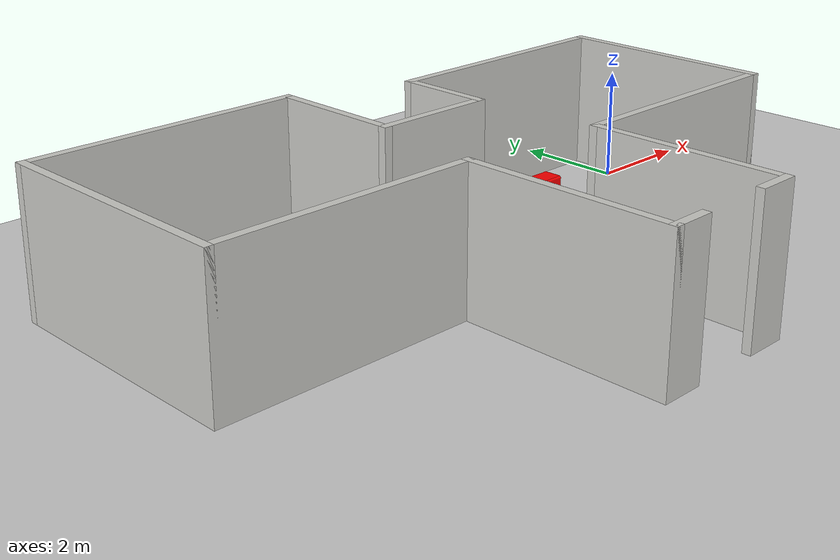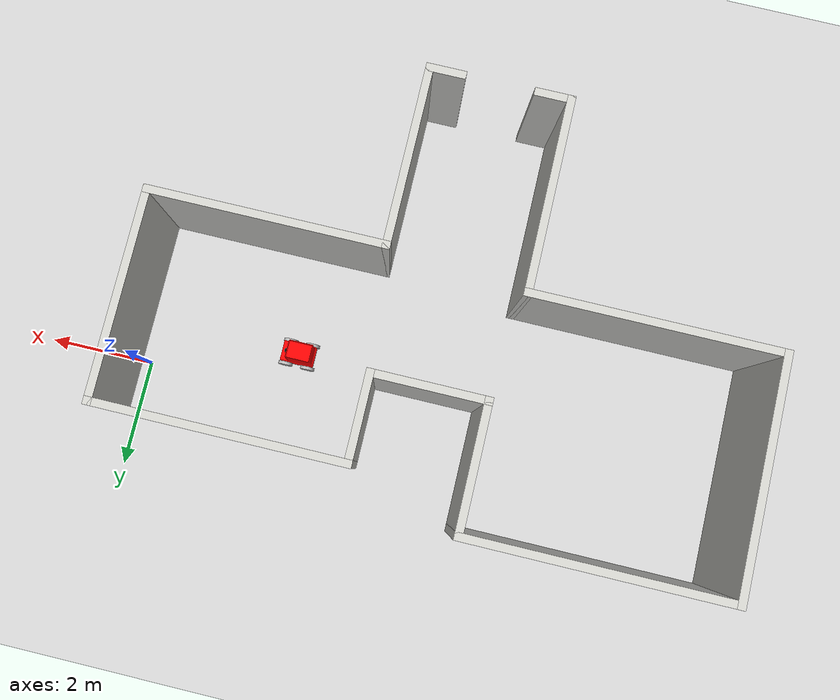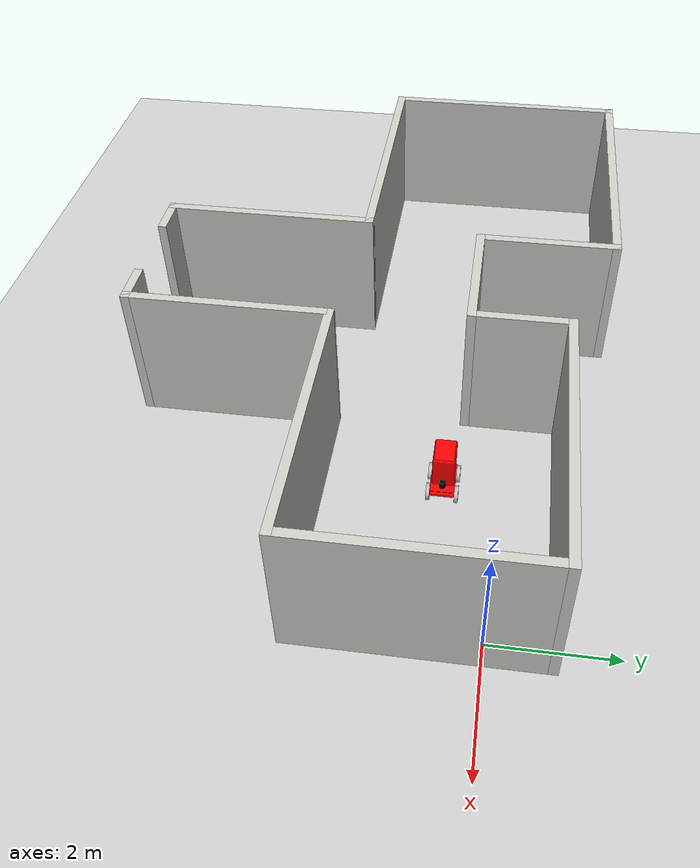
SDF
<sdf version="1.7">
 <world name="default">
  <light name="sun" type="directional">
   <pose>0 0 10 0 -0 0</pose>
   <diffuse>0.8 0.8 0.8 1</diffuse>
   <specular>0.2 0.2 0.2 1</specular>
   <attenuation>
    <range>1000</range>
    <constant>0.9</constant>
    <linear>0.01</linear>
    <quadratic>0.001</quadratic>
   </attenuation>
   <direction>-0.5 0.1 -0.9</direction>
   <spot><inner_angle>0</inner_angle><outer_angle>0</outer_angle><falloff>0</falloff></spot>
  </light>
  <model name="ground_plane">
   <static>1</static>
   <link name="link">
    <collision name="collision">
     <geometry><plane><normal>0 0 1</normal><size>100 100</size></plane></geometry>
     <surface>
      <contact><collide_bitmask>65535</collide_bitmask></contact>
      <friction><ode><mu>100</mu><mu2>50</mu2></ode></friction>
     </surface>
    </collision>
    <visual name="visual">
     <cast_shadows>0</cast_shadows>
     <geometry><plane><normal>0 0 1</normal><size>100 100</size></plane></geometry>
     <material>
      <script><uri>file://media/materials/scripts/gazebo.material</uri><name>Gazebo/Grey</name></script>
     </material>
    </visual>
   </link>
  </model>
  <gravity>0 0 -9.8</gravity>
  <magnetic_field>6e-06 2.3e-05 -4.2e-05</magnetic_field>
  <atmosphere type="adiabatic"/>
  <physics type="ode">
   <max_step_size>0.001</max_step_size>
   <real_time_factor>1</real_time_factor>
   <real_time_update_rate>1000</real_time_update_rate>
  </physics>
  <scene><ambient>0.4 0.4 0.4 1</ambient><background>0.7 0.7 0.7 1</background><shadows>1</shadows></scene>
  <audio><device>default</device></audio>
  <spherical_coordinates>
   <surface_model>EARTH_WGS84</surface_model>
   <latitude_deg>0</latitude_deg>
   <longitude_deg>0</longitude_deg>
   <elevation>0</elevation>
   <heading_deg>0</heading_deg>
  </spherical_coordinates>
  <model name="house_bones">
   <pose>-5.515 -2.225 0 0 -0 0</pose>
   <link name="Wall_0">
    <collision name="Wall_0_Collision">
     <geometry><box><size>4.5 0.15 2.5</size></box></geometry>
     <pose>0 0 1.25 0 -0 0</pose>
    </collision>
    <visual name="Wall_0_Visual">
     <pose>0 0 1.25 0 -0 0</pose>
     <geometry><box><size>4.5 0.15 2.5</size></box></geometry>
     <material>
      <script><uri>file://media/materials/scripts/gazebo.material</uri><name>Gazebo/CeilingTiled</name></script>
      <ambient>1 1 1 1</ambient>
     </material>
     <meta><layer>0</layer></meta>
    </visual>
    <pose>3.6 -0.625 0 0 -0 0</pose>
   </link>
   <link name="Wall_10">
    <collision name="Wall_10_Collision">
     <geometry><box><size>4.5 0.15 2.5</size></box></geometry>
     <pose>0 0 1.25 0 -0 0</pose>
    </collision>
    <visual name="Wall_10_Visual">
     <pose>0 0 1.25 0 -0 0</pose>
     <geometry><box><size>4.5 0.15 2.5</size></box></geometry>
     <material>
      <script><uri>file://media/materials/scripts/gazebo.material</uri><name>Gazebo/CeilingTiled</name></script>
      <ambient>0.760784 0.662745 0.627451 1</ambient>
     </material>
     <meta><layer>0</layer></meta>
    </visual>
    <pose>-5.775 1.8 0 0 -0 -1.5708</pose>
   </link>
   <link name="Wall_11">
    <collision name="Wall_11_Collision">
     <geometry><box><size>4.75 0.15 2.5</size></box></geometry>
     <pose>0 0 1.25 0 -0 0</pose>
    </collision>
    <visual name="Wall_11_Visual">
     <pose>0 0 1.25 0 -0 0</pose>
     <geometry><box><size>4.75 0.15 2.5</size></box></geometry>
     <material>
      <script><uri>file://media/materials/scripts/gazebo.material</uri><name>Gazebo/CeilingTiled</name></script>
      <ambient>0.760784 0.662745 0.627451 1</ambient>
     </material>
     <meta><layer>0</layer></meta>
    </visual>
    <pose>-3.475 -0.375 0 0 -0 0</pose>
   </link>
   <link name="Wall_12">
    <collision name="Wall_12_Collision">
     <geometry><box><size>3.75 0.15 2.5</size></box></geometry>
     <pose>0 0 1.25 0 -0 0</pose>
    </collision>
    <visual name="Wall_12_Visual">
     <pose>0 0 1.25 0 -0 0</pose>
     <geometry><box><size>3.75 0.15 2.5</size></box></geometry>
     <material>
      <script><uri>file://media/materials/scripts/gazebo.material</uri><name>Gazebo/CeilingTiled</name></script>
      <ambient>0.760784 0.662745 0.627451 1</ambient>
     </material>
     <meta><layer>0</layer></meta>
    </visual>
    <pose>-1.175 -2.175 0 0 -0 -1.5708</pose>
   </link>
   <link name="Wall_14">
    <collision name="Wall_14_Collision">
     <geometry><box><size>3.5 0.15 2.5</size></box></geometry>
     <pose>0 0 1.25 0 -0 0</pose>
    </collision>
    <visual name="Wall_14_Visual">
     <pose>0 0 1.25 0 -0 0</pose>
     <geometry><box><size>3.5 0.15 2.5</size></box></geometry>
     <material>
      <script><uri>file://media/materials/scripts/gazebo.material</uri><name>Gazebo/CeilingTiled</name></script>
      <ambient>0.760784 0.662745 0.627451 1</ambient>
     </material>
     <meta><layer>0</layer></meta>
    </visual>
    <pose>1.425 -2.3 0 0 -0 -1.5708</pose>
   </link>
   <link name="Wall_15">
    <collision name="Wall_15_Collision">
     <geometry><box><size>0.75 0.15 2.5</size></box></geometry>
     <pose>0 0 1.25 0 -0 0</pose>
    </collision>
    <visual name="Wall_15_Visual">
     <pose>0 0 1.25 0 -0 0</pose>
     <geometry><box><size>0.75 0.15 2.5</size></box></geometry>
     <material>
      <script><uri>file://media/materials/scripts/gazebo.material</uri><name>Gazebo/CeilingTiled</name></script>
      <ambient>0.435294 0.796078 0.67451 1</ambient>
     </material>
     <meta><layer>0</layer></meta>
    </visual>
    <pose>1.125 -3.975 0 0 -0 3.14159</pose>
   </link>
   <link name="Wall_17">
    <collision name="Wall_17_Collision">
     <geometry><box><size>0.75 0.15 2.5</size></box></geometry>
     <pose>0 0 1.25 0 -0 0</pose>
    </collision>
    <visual name="Wall_17_Visual">
     <pose>0 0 1.25 0 -0 0</pose>
     <geometry><box><size>0.75 0.15 2.5</size></box></geometry>
     <material>
      <script><uri>file://media/materials/scripts/gazebo.material</uri><name>Gazebo/CeilingTiled</name></script>
      <ambient>0.435294 0.796078 0.67451 1</ambient>
     </material>
     <meta><layer>0</layer></meta>
    </visual>
    <pose>-0.875 -3.975 0 0 -0 0</pose>
   </link>
   <link name="Wall_3">
    <collision name="Wall_3_Collision">
     <geometry><box><size>4 0.15 2.5</size></box></geometry>
     <pose>0 0 1.25 0 -0 0</pose>
    </collision>
    <visual name="Wall_3_Visual">
     <pose>0 0 1.25 0 -0 0</pose>
     <geometry><box><size>4 0.15 2.5</size></box></geometry>
     <material>
      <script><uri>file://media/materials/scripts/gazebo.material</uri><name>Gazebo/CeilingTiled</name></script>
      <ambient>1 1 1 1</ambient>
     </material>
     <meta><layer>0</layer></meta>
    </visual>
    <pose>5.775 1.3 0 0 -0 1.5708</pose>
   </link>
   <link name="Wall_5">
    <collision name="Wall_5_Collision">
     <geometry><box><size>4.75 0.15 2.5</size></box></geometry>
     <pose>0 0 1.25 0 -0 0</pose>
    </collision>
    <visual name="Wall_5_Visual">
     <pose>0 0 1.25 0 -0 0</pose>
     <geometry><box><size>4.75 0.15 2.5</size></box></geometry>
     <material>
      <script><uri>file://media/materials/scripts/gazebo.material</uri><name>Gazebo/CeilingTiled</name></script>
      <ambient>1 1 1 1</ambient>
     </material>
     <meta><layer>0</layer></meta>
    </visual>
    <pose>3.475 3.225 0 0 -0 3.14159</pose>
   </link>
   <link name="Wall_6">
    <collision name="Wall_6_Collision">
     <geometry><box><size>1.75 0.15 2.5</size></box></geometry>
     <pose>0 0 1.25 0 -0 0</pose>
    </collision>
    <visual name="Wall_6_Visual">
     <pose>0 0 1.25 0 -0 0</pose>
     <geometry><box><size>1.75 0.15 2.5</size></box></geometry>
     <material>
      <script><uri>file://media/materials/scripts/gazebo.material</uri><name>Gazebo/CeilingTiled</name></script>
      <ambient>1 1 1 1</ambient>
     </material>
     <meta><layer>0</layer></meta>
    </visual>
    <pose>1.175 2.425 0 0 -0 -1.5708</pose>
   </link>
   <link name="Wall_7">
    <collision name="Wall_7_Collision">
     <geometry><box><size>2.25 0.15 2.5</size></box></geometry>
     <pose>0 0 1.25 0 -0 0</pose>
    </collision>
    <visual name="Wall_7_Visual">
     <pose>0 0 1.25 0 -0 0</pose>
     <geometry><box><size>2.25 0.15 2.5</size></box></geometry>
     <material>
      <script><uri>file://media/materials/scripts/gazebo.material</uri><name>Gazebo/CeilingTiled</name></script>
      <ambient>0.760784 0.662745 0.627451 1</ambient>
     </material>
     <meta><layer>0</layer></meta>
    </visual>
    <pose>0.125 1.625 0 0 -0 3.14159</pose>
   </link>
   <link name="Wall_8">
    <collision name="Wall_8_Collision">
     <geometry><box><size>2.5 0.15 2.5</size></box></geometry>
     <pose>0 0 1.25 0 -0 0</pose>
    </collision>
    <visual name="Wall_8_Visual">
     <pose>0 0 1.25 0 -0 0</pose>
     <geometry><box><size>2.5 0.15 2.5</size></box></geometry>
     <material>
      <script><uri>file://media/materials/scripts/gazebo.material</uri><name>Gazebo/CeilingTiled</name></script>
      <ambient>0.760784 0.662745 0.627451 1</ambient>
     </material>
     <meta><layer>0</layer></meta>
    </visual>
    <pose>-0.925 2.8 0 0 -0 1.5708</pose>
   </link>
   <link name="Wall_9">
    <collision name="Wall_9_Collision">
     <geometry><box><size>5 0.15 2.5</size></box></geometry>
     <pose>0 0 1.25 0 -0 0</pose>
    </collision>
    <visual name="Wall_9_Visual">
     <pose>0 0 1.25 0 -0 0</pose>
     <geometry><box><size>5 0.15 2.5</size></box></geometry>
     <material>
      <script><uri>file://media/materials/scripts/gazebo.material</uri><name>Gazebo/CeilingTiled</name></script>
      <ambient>0.760784 0.662745 0.627451 1</ambient>
     </material>
     <meta><layer>0</layer></meta>
    </visual>
    <pose>-3.35 3.975 0 0 -0 3.14159</pose>
   </link>
   <static>1</static>
  </model>
  <model name="mobile_bot">
   <static>0</static>
   <pose>-2.80929 -0.832235 0.19 1e-06 -4e-06 -0.000227</pose>
   <link name="base_footprint">
    <inertial>
     <inertia><ixx>1</ixx><ixy>0</ixy><ixz>0</ixz><iyy>1</iyy><iyz>0</iyz><izz>1</izz></inertia>
     <mass>1</mass>
    </inertial>
   </link>
   <link name="base_link">
    <collision name="base_collision">
     <pose>0 0 0.1 0 -0 0</pose>
     <geometry><box><size>0.7 0.39 0.2</size></box></geometry>
    </collision>
    <visual name="base_visual">
     <pose>0 0 -0.05 1.5708 -0 -3.14159</pose>
     <geometry>
      <mesh><uri>model://mobile_bot_description/meshes/robot_base.stl</uri><scale>1 1 1</scale></mesh>
     </geometry>
     <material>
      <ambient>1 0 0 1</ambient>
      <diffuse>1 0 0 1</diffuse>
      <specular>0 0 0 1</specular>
      <emissive>0 0 0 1</emissive>
     </material>
    </visual>
    <inertial>
     <inertia><ixx>1</ixx><ixy>0</ixy><ixz>0</ixz><iyy>1</iyy><iyz>0</iyz><izz>1</izz></inertia>
     <mass>1</mass>
    </inertial>
   </link>
   <link name="imu_link">
    <sensor name="bmb_imu" type="imu">
     <always_on>1</always_on>
     <update_rate>100</update_rate>
     <visualize>1</visualize>
     <imu>
      <angular_velocity>
       <x><noise type="gaussian"><mean>0</mean><stddev>0.0002</stddev></noise></x>
       <y><noise type="gaussian"><mean>0</mean><stddev>0.0002</stddev></noise></y>
       <z><noise type="gaussian"><mean>0</mean><stddev>0.0002</stddev></noise></z>
      </angular_velocity>
      <linear_acceleration>
       <x><noise type="gaussian"><mean>0</mean><stddev>0.017</stddev></noise></x>
       <y><noise type="gaussian"><mean>0</mean><stddev>0.017</stddev></noise></y>
       <z><noise type="gaussian"><mean>0</mean><stddev>0.017</stddev></noise></z>
      </linear_acceleration>
      <orientation>
       <x><noise type="gaussian"><mean>0.0</mean><stddev>2e-3</stddev></noise></x>
       <y><noise type="gaussian"><mean>0.0</mean><stddev>2e-3</stddev></noise></y>
       <z><noise type="gaussian"><mean>0.0</mean><stddev>2e-3</stddev></noise></z>
      </orientation>
     </imu>
     <plugin name="mobile_bot_imu" filename="libgazebo_ros_imu_sensor.so">
      <initial_orientation_as_reference>0</initial_orientation_as_reference>
      <frame_name>imu_link</frame_name>
      <ros><namespace>/imu</namespace><remapping>~/out:=data</remapping></ros>
     </plugin>
    </sensor>
    <inertial>
     <inertia><ixx>1</ixx><ixy>0</ixy><ixz>0</ixz><iyy>1</iyy><iyz>0</iyz><izz>1</izz></inertia>
     <mass>1</mass>
    </inertial>
   </link>
   <link name="gps_link">
    <sensor name="bmb_gps" type="gps">
     <always_on>1</always_on>
     <update_rate>10</update_rate>
     <gps>
      <position_sensing>
       <horizontal><noise type="gaussian"><mean>0</mean><stddev>0.01</stddev></noise></horizontal>
       <vertical><noise type="gaussian"><mean>0</mean><stddev>1</stddev></noise></vertical>
      </position_sensing>
     </gps>
     <plugin name="mobile_bot_gps" filename="libgazebo_ros_gps_sensor.so">
      <ros><remapping>~/out:=gps/fix</remapping></ros>
     </plugin>
    </sensor>
    <inertial>
     <inertia><ixx>1</ixx><ixy>0</ixy><ixz>0</ixz><iyy>1</iyy><iyz>0</iyz><izz>1</izz></inertia>
     <mass>1</mass>
    </inertial>
   </link>
   <link name="lidar_link">
    <inertial>
     <pose>0.215 0 0.13 0 -0 0</pose>
     <inertia><ixx>0.001</ixx><ixy>0</ixy><ixz>0</ixz><iyy>0.001</iyy><iyz>0</iyz><izz>0.001</izz></inertia>
     <mass>0.114</mass>
    </inertial>
    <collision name="lidar_collision">
     <pose>0.215 0 0.13 0 -0 0</pose>
     <geometry><cylinder><radius>0.0508</radius><length>0.18</length></cylinder></geometry>
    </collision>
    <visual name="lidar_visual">
     <pose>0.215 0 0.13 0 -0 0</pose>
     <geometry><cylinder><radius>0.0508</radius><length>0.18</length></cylinder></geometry>
     <material>
      <ambient>0 0 0 1</ambient>
      <diffuse>0 0 0 1</diffuse>
      <specular>0 0 0 1</specular>
      <emissive>0 0 0 1</emissive>
     </material>
    </visual>
    <sensor name="lidar" type="ray">
     <pose>0.215 0 0.215 0 -0 0</pose>
     <always_on>1</always_on>
     <visualize>1</visualize>
     <update_rate>5</update_rate>
     <ray>
      <scan>
       <horizontal>
        <samples>360</samples>
        <resolution>1</resolution>
        <min_angle>0</min_angle>
        <max_angle>6.28</max_angle>
       </horizontal>
       <vertical><samples>1</samples><min_angle>0</min_angle><max_angle>0</max_angle></vertical>
      </scan>
      <range><min>0.12</min><max>3.5</max><resolution>0.015</resolution></range>
      <noise><type>gaussian</type><mean>0</mean><stddev>0.01</stddev></noise>
     </ray>
     <plugin name="scan" filename="libgazebo_ros_ray_sensor.so">
      <ros><remapping>~/out:=scan</remapping></ros>
      <output_type>sensor_msgs/LaserScan</output_type>
      <frame_name>lidar_link</frame_name>
     </plugin>
    </sensor>
   </link>
   <link name="drivewhl_l_link">
    <pose>-0.221 0.23 -0.05 3.14159 1.57079 -1.57079</pose>
    <collision name="drivewhl_l_collision">
     <geometry><cylinder><radius>0.14</radius><length>0.06</length></cylinder></geometry>
    </collision>
    <visual name="drivewhl_l_visual">
     <geometry><cylinder><radius>0.14</radius><length>0.06</length></cylinder></geometry>
    </visual>
    <inertial>
     <inertia><ixx>1</ixx><ixy>0</ixy><ixz>0</ixz><iyy>1</iyy><iyz>0</iyz><izz>1</izz></inertia>
     <mass>1</mass>
    </inertial>
   </link>
   <link name="drivewhl_r_link">
    <pose>-0.221 -0.23 -0.05 3.14159 1.57079 -1.57079</pose>
    <collision name="drivewhl_r_collision">
     <geometry><cylinder><radius>0.14</radius><length>0.06</length></cylinder></geometry>
    </collision>
    <visual name="drivewhl_r_visual">
     <geometry><cylinder><radius>0.14</radius><length>0.06</length></cylinder></geometry>
    </visual>
    <inertial>
     <inertia><ixx>1</ixx><ixy>0</ixy><ixz>0</ixz><iyy>1</iyy><iyz>0</iyz><izz>1</izz></inertia>
     <mass>1</mass>
    </inertial>
   </link>
   <link name="front_wl_link">
    <pose>0.217 0.23 -0.05 3.14159 1.57079 -1.57079</pose>
    <collision name="front_wl_collision">
     <geometry><cylinder><radius>0.14</radius><length>0.06</length></cylinder></geometry>
    </collision>
    <visual name="front_wl_visual">
     <geometry><cylinder><radius>0.14</radius><length>0.06</length></cylinder></geometry>
    </visual>
    <inertial>
     <inertia><ixx>1</ixx><ixy>0</ixy><ixz>0</ixz><iyy>1</iyy><iyz>0</iyz><izz>1</izz></inertia>
     <mass>1</mass>
    </inertial>
   </link>
   <link name="front_wr_link">
    <pose>0.217 -0.23 -0.05 3.14159 1.57079 -1.57079</pose>
    <collision name="front_wr_collision">
     <geometry><cylinder><radius>0.14</radius><length>0.06</length></cylinder></geometry>
    </collision>
    <visual name="front_wr_visual">
     <geometry><cylinder><radius>0.14</radius><length>0.06</length></cylinder></geometry>
    </visual>
    <inertial>
     <inertia><ixx>1</ixx><ixy>0</ixy><ixz>0</ixz><iyy>1</iyy><iyz>0</iyz><izz>1</izz></inertia>
     <mass>1</mass>
    </inertial>
   </link>
   <joint name="base_joint" type="fixed"><parent>base_footprint</parent><child>base_link</child></joint>
   <joint name="drivewhl_l_joint" type="revolute">
    <parent>base_link</parent>
    <child>drivewhl_l_link</child>
    <axis>
     <xyz>0 0 1</xyz>
     <limit><lower>-1e+16</lower><upper>1e+16</upper></limit>
     <dynamics><spring_reference>0</spring_reference><spring_stiffness>0</spring_stiffness></dynamics>
    </axis>
   </joint>
   <joint name="drivewhl_r_joint" type="revolute">
    <parent>base_link</parent>
    <child>drivewhl_r_link</child>
    <axis>
     <xyz>0 0 1</xyz>
     <limit><lower>-1e+16</lower><upper>1e+16</upper></limit>
     <dynamics><spring_reference>0</spring_reference><spring_stiffness>0</spring_stiffness></dynamics>
    </axis>
   </joint>
   <joint name="front_wl_joint" type="revolute">
    <parent>base_link</parent>
    <child>front_wl_link</child>
    <axis>
     <xyz>0 0 1</xyz>
     <limit><lower>-1e+16</lower><upper>1e+16</upper></limit>
     <dynamics><spring_reference>0</spring_reference><spring_stiffness>0</spring_stiffness></dynamics>
    </axis>
   </joint>
   <joint name="front_wr_joint" type="revolute">
    <parent>base_link</parent>
    <child>front_wr_link</child>
    <axis>
     <xyz>0 0 1</xyz>
     <limit><lower>-1e+16</lower><upper>1e+16</upper></limit>
     <dynamics><spring_reference>0</spring_reference><spring_stiffness>0</spring_stiffness></dynamics>
    </axis>
   </joint>
   <joint name="imu_joint" type="fixed"><parent>base_link</parent><child>imu_link</child></joint>
   <joint name="gps_joint" type="fixed"><parent>base_link</parent><child>gps_link</child></joint>
   <joint name="lidar_joint" type="fixed"><parent>base_link</parent><child>lidar_link</child></joint>
   <plugin name="mobile_bot_diff_drive" filename="libgazebo_ros_diff_drive.so">
    <update_rate>30</update_rate>
    <left_joint>front_wl_joint</left_joint>
    <right_joint>front_wr_joint</right_joint>
    <left_rear_joint>drivewhl_l_joint</left_rear_joint>
    <right_rear_joint>drivewhl_r_joint</right_rear_joint>
    <wheel_separation>0.52</wheel_separation>
    <wheel_diameter>0.28</wheel_diameter>
    <max_wheel_torque>20</max_wheel_torque>
    <max_wheel_acceleration>1.0</max_wheel_acceleration>
    <command_topic>cmd_vel</command_topic>
    <publish_odom>1</publish_odom>
    <publish_odom_tf>0</publish_odom_tf>
    <publish_wheel_tf>0</publish_wheel_tf>
    <odometry_topic>odom</odometry_topic>
    <odometry_frame>odom</odometry_frame>
    <robot_base_frame>base_footprint</robot_base_frame>
    <odometry_source>0</odometry_source>
    <ros><remapping>odom:=wheel/odometry</remapping></ros>
   </plugin>
   <plugin name="mobile_bot_joint_state" filename="libgazebo_ros_joint_state_publisher.so">
    <ros><remapping>~/out:=joint_states</remapping></ros>
    <update_rate>30</update_rate>
    <joint_name>drivewhl_l_joint</joint_name>
    <joint_name>drivewhl_r_joint</joint_name>
    <joint_name>front_wl_joint</joint_name>
    <joint_name>front_wr_joint</joint_name>
   </plugin>
  </model>
 </world>
</sdf>
